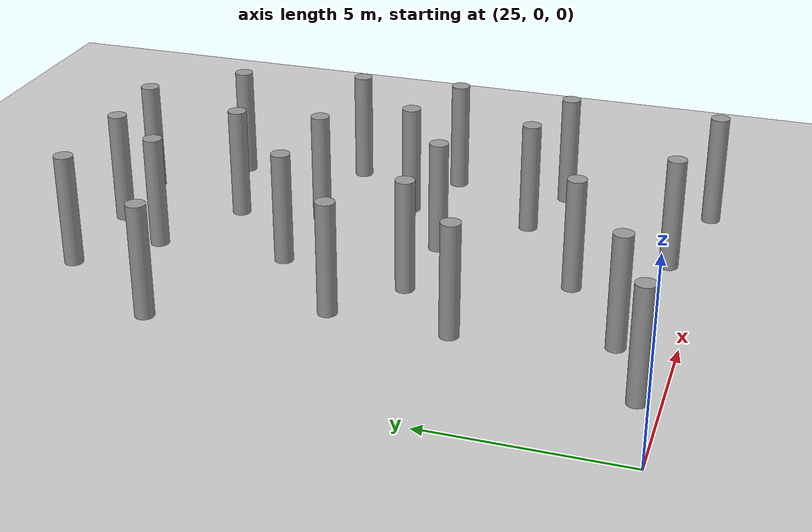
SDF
<sdf version="1.6">
 <world name="default">
  <model name="ground_plane">
   <static>1</static>
   <link name="link">
    <collision name="collision">
     <geometry><plane><normal>0 0 1</normal><size>100 100</size></plane></geometry>
     <surface><friction><ode><mu>100</mu><mu2>50</mu2></ode></friction></surface>
    </collision>
    <visual name="visual">
     <cast_shadows>0</cast_shadows>
     <geometry><plane><normal>0 0 1</normal><size>100 100</size></plane></geometry>
     <material>
      <script><uri>file://media/materials/scripts/gazebo.material</uri><name>Gazebo/Grey</name></script>
     </material>
    </visual>
   </link>
  </model>
  <model name="LjjForest_5">
   <link name="link_0_clone_11">
    <inertial>
     <mass>1</mass>
     <inertia><ixx>0.145833</ixx><ixy>0</ixy><ixz>0</ixz><iyy>0.145833</iyy><iyz>0</iyz><izz>0.125</izz></inertia>
    </inertial>
    <pose>2.92414 -7.00263 0 0 -0 0</pose>
    <visual name="visual">
     <geometry><cylinder><radius>0.25</radius><length>3</length></cylinder></geometry>
     <material>
      <lighting>1</lighting>
      <script><uri>file://media/materials/scripts/gazebo.material</uri><name>Gazebo/Grey</name></script>
      <shader type="vertex"><normal_map>__default__</normal_map></shader>
      <ambient>0.3 0.3 0.3 1</ambient>
      <diffuse>0.7 0.7 0.7 1</diffuse>
      <specular>0.01 0.01 0.01 1</specular>
      <emissive>0 0 0 1</emissive>
     </material>
    </visual>
    <collision name="collision">
     <geometry><cylinder><radius>0.25</radius><length>3</length></cylinder></geometry>
     <surface>
      <friction>
       <ode><mu>1</mu><mu2>1</mu2><fdir1>0 0 0</fdir1><slip1>0</slip1><slip2>0</slip2></ode>
       <torsional>
        <coefficient>1</coefficient>
        <patch_radius>0</patch_radius>
        <surface_radius>0</surface_radius>
        <use_patch_radius>1</use_patch_radius>
        <ode><slip>0</slip></ode>
       </torsional>
      </friction>
      <bounce><restitution_coefficient>0</restitution_coefficient><threshold>1e+06</threshold></bounce>
      <contact>
       <collide_without_contact>0</collide_without_contact>
       <collide_without_contact_bitmask>1</collide_without_contact_bitmask>
       <collide_bitmask>1</collide_bitmask>
       <ode>
        <soft_cfm>0</soft_cfm>
        <soft_erp>0.2</soft_erp>
        <kp>1e+13</kp>
        <kd>1</kd>
        <max_vel>0.01</max_vel>
        <min_depth>0</min_depth>
       </ode>
       <bullet>
        <split_impulse>1</split_impulse>
        <split_impulse_penetration_threshold>-0.01</split_impulse_penetration_threshold>
        <soft_cfm>0</soft_cfm>
        <soft_erp>0.2</soft_erp>
        <kp>1e+13</kp>
        <kd>1</kd>
       </bullet>
      </contact>
     </surface>
    </collision>
   </link>
   <link name="link_0_clone_12">
    <inertial>
     <mass>1</mass>
     <inertia><ixx>0.145833</ixx><ixy>0</ixy><ixz>0</ixz><iyy>0.145833</iyy><iyz>0</iyz><izz>0.125</izz></inertia>
    </inertial>
    <pose>4.76112 -9.06376 0 0 -0 0</pose>
    <visual name="visual">
     <geometry><cylinder><radius>0.25</radius><length>3</length></cylinder></geometry>
     <material>
      <lighting>1</lighting>
      <script><uri>file://media/materials/scripts/gazebo.material</uri><name>Gazebo/Grey</name></script>
      <shader type="vertex"><normal_map>__default__</normal_map></shader>
      <ambient>0.3 0.3 0.3 1</ambient>
      <diffuse>0.7 0.7 0.7 1</diffuse>
      <specular>0.01 0.01 0.01 1</specular>
      <emissive>0 0 0 1</emissive>
     </material>
    </visual>
    <collision name="collision">
     <geometry><cylinder><radius>0.25</radius><length>3</length></cylinder></geometry>
     <surface>
      <friction>
       <ode><mu>1</mu><mu2>1</mu2><fdir1>0 0 0</fdir1><slip1>0</slip1><slip2>0</slip2></ode>
       <torsional>
        <coefficient>1</coefficient>
        <patch_radius>0</patch_radius>
        <surface_radius>0</surface_radius>
        <use_patch_radius>1</use_patch_radius>
        <ode><slip>0</slip></ode>
       </torsional>
      </friction>
      <bounce><restitution_coefficient>0</restitution_coefficient><threshold>1e+06</threshold></bounce>
      <contact>
       <collide_without_contact>0</collide_without_contact>
       <collide_without_contact_bitmask>1</collide_without_contact_bitmask>
       <collide_bitmask>1</collide_bitmask>
       <ode>
        <soft_cfm>0</soft_cfm>
        <soft_erp>0.2</soft_erp>
        <kp>1e+13</kp>
        <kd>1</kd>
        <max_vel>0.01</max_vel>
        <min_depth>0</min_depth>
       </ode>
       <bullet>
        <split_impulse>1</split_impulse>
        <split_impulse_penetration_threshold>-0.01</split_impulse_penetration_threshold>
        <soft_cfm>0</soft_cfm>
        <soft_erp>0.2</soft_erp>
        <kp>1e+13</kp>
        <kd>1</kd>
       </bullet>
      </contact>
     </surface>
    </collision>
   </link>
   <link name="link_0_clone_13">
    <inertial>
     <mass>1</mass>
     <inertia><ixx>0.145833</ixx><ixy>0</ixy><ixz>0</ixz><iyy>0.145833</iyy><iyz>0</iyz><izz>0.125</izz></inertia>
    </inertial>
    <pose>0.731055 -7.10049 0 0 -0 0</pose>
    <visual name="visual">
     <geometry><cylinder><radius>0.25</radius><length>3</length></cylinder></geometry>
     <material>
      <lighting>1</lighting>
      <script><uri>file://media/materials/scripts/gazebo.material</uri><name>Gazebo/Grey</name></script>
      <shader type="vertex"><normal_map>__default__</normal_map></shader>
      <ambient>0.3 0.3 0.3 1</ambient>
      <diffuse>0.7 0.7 0.7 1</diffuse>
      <specular>0.01 0.01 0.01 1</specular>
      <emissive>0 0 0 1</emissive>
     </material>
    </visual>
    <collision name="collision">
     <geometry><cylinder><radius>0.25</radius><length>3</length></cylinder></geometry>
     <surface>
      <friction>
       <ode><mu>1</mu><mu2>1</mu2><fdir1>0 0 0</fdir1><slip1>0</slip1><slip2>0</slip2></ode>
       <torsional>
        <coefficient>1</coefficient>
        <patch_radius>0</patch_radius>
        <surface_radius>0</surface_radius>
        <use_patch_radius>1</use_patch_radius>
        <ode><slip>0</slip></ode>
       </torsional>
      </friction>
      <bounce><restitution_coefficient>0</restitution_coefficient><threshold>1e+06</threshold></bounce>
      <contact>
       <collide_without_contact>0</collide_without_contact>
       <collide_without_contact_bitmask>1</collide_without_contact_bitmask>
       <collide_bitmask>1</collide_bitmask>
       <ode>
        <soft_cfm>0</soft_cfm>
        <soft_erp>0.2</soft_erp>
        <kp>1e+13</kp>
        <kd>1</kd>
        <max_vel>0.01</max_vel>
        <min_depth>0</min_depth>
       </ode>
       <bullet>
        <split_impulse>1</split_impulse>
        <split_impulse_penetration_threshold>-0.01</split_impulse_penetration_threshold>
        <soft_cfm>0</soft_cfm>
        <soft_erp>0.2</soft_erp>
        <kp>1e+13</kp>
        <kd>1</kd>
       </bullet>
      </contact>
     </surface>
    </collision>
   </link>
   <link name="link_0_clone_18">
    <inertial>
     <mass>1</mass>
     <inertia><ixx>0.145833</ixx><ixy>0</ixy><ixz>0</ixz><iyy>0.145833</iyy><iyz>0</iyz><izz>0.125</izz></inertia>
    </inertial>
    <pose>-2.11118 -7.04502 0 0 -0 0</pose>
    <visual name="visual">
     <geometry><cylinder><radius>0.25</radius><length>3</length></cylinder></geometry>
     <material>
      <lighting>1</lighting>
      <script><uri>file://media/materials/scripts/gazebo.material</uri><name>Gazebo/Grey</name></script>
      <shader type="vertex"><normal_map>__default__</normal_map></shader>
      <ambient>0.3 0.3 0.3 1</ambient>
      <diffuse>0.7 0.7 0.7 1</diffuse>
      <specular>0.01 0.01 0.01 1</specular>
      <emissive>0 0 0 1</emissive>
     </material>
    </visual>
    <collision name="collision">
     <geometry><cylinder><radius>0.25</radius><length>3</length></cylinder></geometry>
     <surface>
      <friction>
       <ode><mu>1</mu><mu2>1</mu2><fdir1>0 0 0</fdir1><slip1>0</slip1><slip2>0</slip2></ode>
       <torsional>
        <coefficient>1</coefficient>
        <patch_radius>0</patch_radius>
        <surface_radius>0</surface_radius>
        <use_patch_radius>1</use_patch_radius>
        <ode><slip>0</slip></ode>
       </torsional>
      </friction>
      <bounce><restitution_coefficient>0</restitution_coefficient><threshold>1e+06</threshold></bounce>
      <contact>
       <collide_without_contact>0</collide_without_contact>
       <collide_without_contact_bitmask>1</collide_without_contact_bitmask>
       <collide_bitmask>1</collide_bitmask>
       <ode>
        <soft_cfm>0</soft_cfm>
        <soft_erp>0.2</soft_erp>
        <kp>1e+13</kp>
        <kd>1</kd>
        <max_vel>0.01</max_vel>
        <min_depth>0</min_depth>
       </ode>
       <bullet>
        <split_impulse>1</split_impulse>
        <split_impulse_penetration_threshold>-0.01</split_impulse_penetration_threshold>
        <soft_cfm>0</soft_cfm>
        <soft_erp>0.2</soft_erp>
        <kp>1e+13</kp>
        <kd>1</kd>
       </bullet>
      </contact>
     </surface>
    </collision>
   </link>
   <link name="link_0_clone_19">
    <inertial>
     <mass>1</mass>
     <inertia><ixx>0.145833</ixx><ixy>0</ixy><ixz>0</ixz><iyy>0.145833</iyy><iyz>0</iyz><izz>0.125</izz></inertia>
    </inertial>
    <pose>-0.4391 -8.69513 0 0 -0 0</pose>
    <visual name="visual">
     <geometry><cylinder><radius>0.25</radius><length>3</length></cylinder></geometry>
     <material>
      <lighting>1</lighting>
      <script><uri>file://media/materials/scripts/gazebo.material</uri><name>Gazebo/Grey</name></script>
      <shader type="vertex"><normal_map>__default__</normal_map></shader>
      <ambient>0.3 0.3 0.3 1</ambient>
      <diffuse>0.7 0.7 0.7 1</diffuse>
      <specular>0.01 0.01 0.01 1</specular>
      <emissive>0 0 0 1</emissive>
     </material>
    </visual>
    <collision name="collision">
     <geometry><cylinder><radius>0.25</radius><length>3</length></cylinder></geometry>
     <surface>
      <friction>
       <ode><mu>1</mu><mu2>1</mu2><fdir1>0 0 0</fdir1><slip1>0</slip1><slip2>0</slip2></ode>
       <torsional>
        <coefficient>1</coefficient>
        <patch_radius>0</patch_radius>
        <surface_radius>0</surface_radius>
        <use_patch_radius>1</use_patch_radius>
        <ode><slip>0</slip></ode>
       </torsional>
      </friction>
      <bounce><restitution_coefficient>0</restitution_coefficient><threshold>1e+06</threshold></bounce>
      <contact>
       <collide_without_contact>0</collide_without_contact>
       <collide_without_contact_bitmask>1</collide_without_contact_bitmask>
       <collide_bitmask>1</collide_bitmask>
       <ode>
        <soft_cfm>0</soft_cfm>
        <soft_erp>0.2</soft_erp>
        <kp>1e+13</kp>
        <kd>1</kd>
        <max_vel>0.01</max_vel>
        <min_depth>0</min_depth>
       </ode>
       <bullet>
        <split_impulse>1</split_impulse>
        <split_impulse_penetration_threshold>-0.01</split_impulse_penetration_threshold>
        <soft_cfm>0</soft_cfm>
        <soft_erp>0.2</soft_erp>
        <kp>1e+13</kp>
        <kd>1</kd>
       </bullet>
      </contact>
     </surface>
    </collision>
   </link>
   <link name="link_0_clone_20">
    <inertial>
     <mass>1</mass>
     <inertia><ixx>0.145833</ixx><ixy>0</ixy><ixz>0</ixz><iyy>0.145833</iyy><iyz>0</iyz><izz>0.125</izz></inertia>
    </inertial>
    <pose>1.97365 -10.0303 0 0 -0 0</pose>
    <visual name="visual">
     <geometry><cylinder><radius>0.25</radius><length>3</length></cylinder></geometry>
     <material>
      <lighting>1</lighting>
      <script><uri>file://media/materials/scripts/gazebo.material</uri><name>Gazebo/Grey</name></script>
      <shader type="vertex"><normal_map>__default__</normal_map></shader>
      <ambient>0.3 0.3 0.3 1</ambient>
      <diffuse>0.7 0.7 0.7 1</diffuse>
      <specular>0.01 0.01 0.01 1</specular>
      <emissive>0 0 0 1</emissive>
     </material>
    </visual>
    <collision name="collision">
     <geometry><cylinder><radius>0.25</radius><length>3</length></cylinder></geometry>
     <surface>
      <friction>
       <ode><mu>1</mu><mu2>1</mu2><fdir1>0 0 0</fdir1><slip1>0</slip1><slip2>0</slip2></ode>
       <torsional>
        <coefficient>1</coefficient>
        <patch_radius>0</patch_radius>
        <surface_radius>0</surface_radius>
        <use_patch_radius>1</use_patch_radius>
        <ode><slip>0</slip></ode>
       </torsional>
      </friction>
      <bounce><restitution_coefficient>0</restitution_coefficient><threshold>1e+06</threshold></bounce>
      <contact>
       <collide_without_contact>0</collide_without_contact>
       <collide_without_contact_bitmask>1</collide_without_contact_bitmask>
       <collide_bitmask>1</collide_bitmask>
       <ode>
        <soft_cfm>0</soft_cfm>
        <soft_erp>0.2</soft_erp>
        <kp>1e+13</kp>
        <kd>1</kd>
        <max_vel>0.01</max_vel>
        <min_depth>0</min_depth>
       </ode>
       <bullet>
        <split_impulse>1</split_impulse>
        <split_impulse_penetration_threshold>-0.01</split_impulse_penetration_threshold>
        <soft_cfm>0</soft_cfm>
        <soft_erp>0.2</soft_erp>
        <kp>1e+13</kp>
        <kd>1</kd>
       </bullet>
      </contact>
     </surface>
    </collision>
   </link>
   <link name="link_0_clone_21">
    <inertial>
     <mass>1</mass>
     <inertia><ixx>0.145833</ixx><ixy>0</ixy><ixz>0</ixz><iyy>0.145833</iyy><iyz>0</iyz><izz>0.125</izz></inertia>
    </inertial>
    <pose>-4.11405 -10.0375 0 0 -0 0</pose>
    <visual name="visual">
     <geometry><cylinder><radius>0.25</radius><length>3</length></cylinder></geometry>
     <material>
      <lighting>1</lighting>
      <script><uri>file://media/materials/scripts/gazebo.material</uri><name>Gazebo/Grey</name></script>
      <shader type="vertex"><normal_map>__default__</normal_map></shader>
      <ambient>0.3 0.3 0.3 1</ambient>
      <diffuse>0.7 0.7 0.7 1</diffuse>
      <specular>0.01 0.01 0.01 1</specular>
      <emissive>0 0 0 1</emissive>
     </material>
    </visual>
    <collision name="collision">
     <geometry><cylinder><radius>0.25</radius><length>3</length></cylinder></geometry>
     <surface>
      <friction>
       <ode><mu>1</mu><mu2>1</mu2><fdir1>0 0 0</fdir1><slip1>0</slip1><slip2>0</slip2></ode>
       <torsional>
        <coefficient>1</coefficient>
        <patch_radius>0</patch_radius>
        <surface_radius>0</surface_radius>
        <use_patch_radius>1</use_patch_radius>
        <ode><slip>0</slip></ode>
       </torsional>
      </friction>
      <bounce><restitution_coefficient>0</restitution_coefficient><threshold>1e+06</threshold></bounce>
      <contact>
       <collide_without_contact>0</collide_without_contact>
       <collide_without_contact_bitmask>1</collide_without_contact_bitmask>
       <collide_bitmask>1</collide_bitmask>
       <ode>
        <soft_cfm>0</soft_cfm>
        <soft_erp>0.2</soft_erp>
        <kp>1e+13</kp>
        <kd>1</kd>
        <max_vel>0.01</max_vel>
        <min_depth>0</min_depth>
       </ode>
       <bullet>
        <split_impulse>1</split_impulse>
        <split_impulse_penetration_threshold>-0.01</split_impulse_penetration_threshold>
        <soft_cfm>0</soft_cfm>
        <soft_erp>0.2</soft_erp>
        <kp>1e+13</kp>
        <kd>1</kd>
       </bullet>
      </contact>
     </surface>
    </collision>
   </link>
   <static>0</static>
   <pose>31.8329 22.65 1.49999 0 -0 0.00223</pose>
  </model>
  <model name="LjjForest_6">
   <link name="link_0">
    <inertial>
     <mass>1</mass>
     <inertia><ixx>0.145833</ixx><ixy>0</ixy><ixz>0</ixz><iyy>0.145833</iyy><iyz>0</iyz><izz>0.125</izz></inertia>
    </inertial>
    <pose>-5.02717 0.116957 0 0 -0 0</pose>
    <visual name="visual">
     <geometry><cylinder><radius>0.25</radius><length>3</length></cylinder></geometry>
     <material>
      <lighting>1</lighting>
      <script><uri>file://media/materials/scripts/gazebo.material</uri><name>Gazebo/Grey</name></script>
      <shader type="vertex"><normal_map>__default__</normal_map></shader>
      <ambient>0.3 0.3 0.3 1</ambient>
      <diffuse>0.7 0.7 0.7 1</diffuse>
      <specular>0.01 0.01 0.01 1</specular>
      <emissive>0 0 0 1</emissive>
     </material>
    </visual>
    <collision name="collision">
     <geometry><cylinder><radius>0.25</radius><length>3</length></cylinder></geometry>
     <surface>
      <friction>
       <ode><mu>1</mu><mu2>1</mu2><fdir1>0 0 0</fdir1><slip1>0</slip1><slip2>0</slip2></ode>
       <torsional>
        <coefficient>1</coefficient>
        <patch_radius>0</patch_radius>
        <surface_radius>0</surface_radius>
        <use_patch_radius>1</use_patch_radius>
        <ode><slip>0</slip></ode>
       </torsional>
      </friction>
      <bounce><restitution_coefficient>0</restitution_coefficient><threshold>1e+06</threshold></bounce>
      <contact>
       <collide_without_contact>0</collide_without_contact>
       <collide_without_contact_bitmask>1</collide_without_contact_bitmask>
       <collide_bitmask>1</collide_bitmask>
       <ode>
        <soft_cfm>0</soft_cfm>
        <soft_erp>0.2</soft_erp>
        <kp>1e+13</kp>
        <kd>1</kd>
        <max_vel>0.01</max_vel>
        <min_depth>0</min_depth>
       </ode>
       <bullet>
        <split_impulse>1</split_impulse>
        <split_impulse_penetration_threshold>-0.01</split_impulse_penetration_threshold>
        <soft_cfm>0</soft_cfm>
        <soft_erp>0.2</soft_erp>
        <kp>1e+13</kp>
        <kd>1</kd>
       </bullet>
      </contact>
     </surface>
    </collision>
   </link>
   <link name="link_0_clone">
    <inertial>
     <mass>1</mass>
     <inertia><ixx>0.145833</ixx><ixy>0</ixy><ixz>0</ixz><iyy>0.145833</iyy><iyz>0</iyz><izz>0.125</izz></inertia>
    </inertial>
    <pose>-2.83119 0.981911 0 0 -0 0</pose>
    <visual name="visual">
     <geometry><cylinder><radius>0.25</radius><length>3</length></cylinder></geometry>
     <material>
      <lighting>1</lighting>
      <script><uri>file://media/materials/scripts/gazebo.material</uri><name>Gazebo/Grey</name></script>
      <shader type="vertex"><normal_map>__default__</normal_map></shader>
      <ambient>0.3 0.3 0.3 1</ambient>
      <diffuse>0.7 0.7 0.7 1</diffuse>
      <specular>0.01 0.01 0.01 1</specular>
      <emissive>0 0 0 1</emissive>
     </material>
    </visual>
    <collision name="collision">
     <geometry><cylinder><radius>0.25</radius><length>3</length></cylinder></geometry>
     <surface>
      <friction>
       <ode><mu>1</mu><mu2>1</mu2><fdir1>0 0 0</fdir1><slip1>0</slip1><slip2>0</slip2></ode>
       <torsional>
        <coefficient>1</coefficient>
        <patch_radius>0</patch_radius>
        <surface_radius>0</surface_radius>
        <use_patch_radius>1</use_patch_radius>
        <ode><slip>0</slip></ode>
       </torsional>
      </friction>
      <bounce><restitution_coefficient>0</restitution_coefficient><threshold>1e+06</threshold></bounce>
      <contact>
       <collide_without_contact>0</collide_without_contact>
       <collide_without_contact_bitmask>1</collide_without_contact_bitmask>
       <collide_bitmask>1</collide_bitmask>
       <ode>
        <soft_cfm>0</soft_cfm>
        <soft_erp>0.2</soft_erp>
        <kp>1e+13</kp>
        <kd>1</kd>
        <max_vel>0.01</max_vel>
        <min_depth>0</min_depth>
       </ode>
       <bullet>
        <split_impulse>1</split_impulse>
        <split_impulse_penetration_threshold>-0.01</split_impulse_penetration_threshold>
        <soft_cfm>0</soft_cfm>
        <soft_erp>0.2</soft_erp>
        <kp>1e+13</kp>
        <kd>1</kd>
       </bullet>
      </contact>
     </surface>
    </collision>
   </link>
   <link name="link_0_clone_0">
    <inertial>
     <mass>1</mass>
     <inertia><ixx>0.145833</ixx><ixy>0</ixy><ixz>0</ixz><iyy>0.145833</iyy><iyz>0</iyz><izz>0.125</izz></inertia>
    </inertial>
    <pose>-0.25253 2.5682 0 0 -0 0</pose>
    <visual name="visual">
     <geometry><cylinder><radius>0.25</radius><length>3</length></cylinder></geometry>
     <material>
      <lighting>1</lighting>
      <script><uri>file://media/materials/scripts/gazebo.material</uri><name>Gazebo/Grey</name></script>
      <shader type="vertex"><normal_map>__default__</normal_map></shader>
      <ambient>0.3 0.3 0.3 1</ambient>
      <diffuse>0.7 0.7 0.7 1</diffuse>
      <specular>0.01 0.01 0.01 1</specular>
      <emissive>0 0 0 1</emissive>
     </material>
    </visual>
    <collision name="collision">
     <geometry><cylinder><radius>0.25</radius><length>3</length></cylinder></geometry>
     <surface>
      <friction>
       <ode><mu>1</mu><mu2>1</mu2><fdir1>0 0 0</fdir1><slip1>0</slip1><slip2>0</slip2></ode>
       <torsional>
        <coefficient>1</coefficient>
        <patch_radius>0</patch_radius>
        <surface_radius>0</surface_radius>
        <use_patch_radius>1</use_patch_radius>
        <ode><slip>0</slip></ode>
       </torsional>
      </friction>
      <bounce><restitution_coefficient>0</restitution_coefficient><threshold>1e+06</threshold></bounce>
      <contact>
       <collide_without_contact>0</collide_without_contact>
       <collide_without_contact_bitmask>1</collide_without_contact_bitmask>
       <collide_bitmask>1</collide_bitmask>
       <ode>
        <soft_cfm>0</soft_cfm>
        <soft_erp>0.2</soft_erp>
        <kp>1e+13</kp>
        <kd>1</kd>
        <max_vel>0.01</max_vel>
        <min_depth>0</min_depth>
       </ode>
       <bullet>
        <split_impulse>1</split_impulse>
        <split_impulse_penetration_threshold>-0.01</split_impulse_penetration_threshold>
        <soft_cfm>0</soft_cfm>
        <soft_erp>0.2</soft_erp>
        <kp>1e+13</kp>
        <kd>1</kd>
       </bullet>
      </contact>
     </surface>
    </collision>
   </link>
   <link name="link_0_clone_2">
    <inertial>
     <mass>1</mass>
     <inertia><ixx>0.145833</ixx><ixy>0</ixy><ixz>0</ixz><iyy>0.145833</iyy><iyz>0</iyz><izz>0.125</izz></inertia>
    </inertial>
    <pose>1.64727 0.418921 0 0 -0 0</pose>
    <visual name="visual">
     <geometry><cylinder><radius>0.25</radius><length>3</length></cylinder></geometry>
     <material>
      <lighting>1</lighting>
      <script><uri>file://media/materials/scripts/gazebo.material</uri><name>Gazebo/Grey</name></script>
      <shader type="vertex"><normal_map>__default__</normal_map></shader>
      <ambient>0.3 0.3 0.3 1</ambient>
      <diffuse>0.7 0.7 0.7 1</diffuse>
      <specular>0.01 0.01 0.01 1</specular>
      <emissive>0 0 0 1</emissive>
     </material>
    </visual>
    <collision name="collision">
     <geometry><cylinder><radius>0.25</radius><length>3</length></cylinder></geometry>
     <surface>
      <friction>
       <ode><mu>1</mu><mu2>1</mu2><fdir1>0 0 0</fdir1><slip1>0</slip1><slip2>0</slip2></ode>
       <torsional>
        <coefficient>1</coefficient>
        <patch_radius>0</patch_radius>
        <surface_radius>0</surface_radius>
        <use_patch_radius>1</use_patch_radius>
        <ode><slip>0</slip></ode>
       </torsional>
      </friction>
      <bounce><restitution_coefficient>0</restitution_coefficient><threshold>1e+06</threshold></bounce>
      <contact>
       <collide_without_contact>0</collide_without_contact>
       <collide_without_contact_bitmask>1</collide_without_contact_bitmask>
       <collide_bitmask>1</collide_bitmask>
       <ode>
        <soft_cfm>0</soft_cfm>
        <soft_erp>0.2</soft_erp>
        <kp>1e+13</kp>
        <kd>1</kd>
        <max_vel>0.01</max_vel>
        <min_depth>0</min_depth>
       </ode>
       <bullet>
        <split_impulse>1</split_impulse>
        <split_impulse_penetration_threshold>-0.01</split_impulse_penetration_threshold>
        <soft_cfm>0</soft_cfm>
        <soft_erp>0.2</soft_erp>
        <kp>1e+13</kp>
        <kd>1</kd>
       </bullet>
      </contact>
     </surface>
    </collision>
   </link>
   <link name="link_0_clone_24">
    <inertial>
     <mass>1</mass>
     <inertia><ixx>0.145833</ixx><ixy>0</ixy><ixz>0</ixz><iyy>0.145833</iyy><iyz>0</iyz><izz>0.125</izz></inertia>
    </inertial>
    <pose>2.92874 7.75131 0 0 -0 0</pose>
    <visual name="visual">
     <geometry><cylinder><radius>0.25</radius><length>3</length></cylinder></geometry>
     <material>
      <lighting>1</lighting>
      <script><uri>file://media/materials/scripts/gazebo.material</uri><name>Gazebo/Grey</name></script>
      <shader type="vertex"><normal_map>__default__</normal_map></shader>
      <ambient>0.3 0.3 0.3 1</ambient>
      <diffuse>0.7 0.7 0.7 1</diffuse>
      <specular>0.01 0.01 0.01 1</specular>
      <emissive>0 0 0 1</emissive>
     </material>
    </visual>
    <collision name="collision">
     <geometry><cylinder><radius>0.25</radius><length>3</length></cylinder></geometry>
     <surface>
      <friction>
       <ode><mu>1</mu><mu2>1</mu2><fdir1>0 0 0</fdir1><slip1>0</slip1><slip2>0</slip2></ode>
       <torsional>
        <coefficient>1</coefficient>
        <patch_radius>0</patch_radius>
        <surface_radius>0</surface_radius>
        <use_patch_radius>1</use_patch_radius>
        <ode><slip>0</slip></ode>
       </torsional>
      </friction>
      <bounce><restitution_coefficient>0</restitution_coefficient><threshold>1e+06</threshold></bounce>
      <contact>
       <collide_without_contact>0</collide_without_contact>
       <collide_without_contact_bitmask>1</collide_without_contact_bitmask>
       <collide_bitmask>1</collide_bitmask>
       <ode>
        <soft_cfm>0</soft_cfm>
        <soft_erp>0.2</soft_erp>
        <kp>1e+13</kp>
        <kd>1</kd>
        <max_vel>0.01</max_vel>
        <min_depth>0</min_depth>
       </ode>
       <bullet>
        <split_impulse>1</split_impulse>
        <split_impulse_penetration_threshold>-0.01</split_impulse_penetration_threshold>
        <soft_cfm>0</soft_cfm>
        <soft_erp>0.2</soft_erp>
        <kp>1e+13</kp>
        <kd>1</kd>
       </bullet>
      </contact>
     </surface>
    </collision>
   </link>
   <link name="link_0_clone_25">
    <inertial>
     <mass>1</mass>
     <inertia><ixx>0.145833</ixx><ixy>0</ixy><ixz>0</ixz><iyy>0.145833</iyy><iyz>0</iyz><izz>0.125</izz></inertia>
    </inertial>
    <pose>4.82479 9.76951 0 0 -0 0</pose>
    <visual name="visual">
     <geometry><cylinder><radius>0.25</radius><length>3</length></cylinder></geometry>
     <material>
      <lighting>1</lighting>
      <script><uri>file://media/materials/scripts/gazebo.material</uri><name>Gazebo/Grey</name></script>
      <shader type="vertex"><normal_map>__default__</normal_map></shader>
      <ambient>0.3 0.3 0.3 1</ambient>
      <diffuse>0.7 0.7 0.7 1</diffuse>
      <specular>0.01 0.01 0.01 1</specular>
      <emissive>0 0 0 1</emissive>
     </material>
    </visual>
    <collision name="collision">
     <geometry><cylinder><radius>0.25</radius><length>3</length></cylinder></geometry>
     <surface>
      <friction>
       <ode><mu>1</mu><mu2>1</mu2><fdir1>0 0 0</fdir1><slip1>0</slip1><slip2>0</slip2></ode>
       <torsional>
        <coefficient>1</coefficient>
        <patch_radius>0</patch_radius>
        <surface_radius>0</surface_radius>
        <use_patch_radius>1</use_patch_radius>
        <ode><slip>0</slip></ode>
       </torsional>
      </friction>
      <bounce><restitution_coefficient>0</restitution_coefficient><threshold>1e+06</threshold></bounce>
      <contact>
       <collide_without_contact>0</collide_without_contact>
       <collide_without_contact_bitmask>1</collide_without_contact_bitmask>
       <collide_bitmask>1</collide_bitmask>
       <ode>
        <soft_cfm>0</soft_cfm>
        <soft_erp>0.2</soft_erp>
        <kp>1e+13</kp>
        <kd>1</kd>
        <max_vel>0.01</max_vel>
        <min_depth>0</min_depth>
       </ode>
       <bullet>
        <split_impulse>1</split_impulse>
        <split_impulse_penetration_threshold>-0.01</split_impulse_penetration_threshold>
        <soft_cfm>0</soft_cfm>
        <soft_erp>0.2</soft_erp>
        <kp>1e+13</kp>
        <kd>1</kd>
       </bullet>
      </contact>
     </surface>
    </collision>
   </link>
   <link name="link_0_clone_26">
    <inertial>
     <mass>1</mass>
     <inertia><ixx>0.145833</ixx><ixy>0</ixy><ixz>0</ixz><iyy>0.145833</iyy><iyz>0</iyz><izz>0.125</izz></inertia>
    </inertial>
    <pose>1.66794 9.91533 0 0 -0 0</pose>
    <visual name="visual">
     <geometry><cylinder><radius>0.25</radius><length>3</length></cylinder></geometry>
     <material>
      <lighting>1</lighting>
      <script><uri>file://media/materials/scripts/gazebo.material</uri><name>Gazebo/Grey</name></script>
      <shader type="vertex"><normal_map>__default__</normal_map></shader>
      <ambient>0.3 0.3 0.3 1</ambient>
      <diffuse>0.7 0.7 0.7 1</diffuse>
      <specular>0.01 0.01 0.01 1</specular>
      <emissive>0 0 0 1</emissive>
     </material>
    </visual>
    <collision name="collision">
     <geometry><cylinder><radius>0.25</radius><length>3</length></cylinder></geometry>
     <surface>
      <friction>
       <ode><mu>1</mu><mu2>1</mu2><fdir1>0 0 0</fdir1><slip1>0</slip1><slip2>0</slip2></ode>
       <torsional>
        <coefficient>1</coefficient>
        <patch_radius>0</patch_radius>
        <surface_radius>0</surface_radius>
        <use_patch_radius>1</use_patch_radius>
        <ode><slip>0</slip></ode>
       </torsional>
      </friction>
      <bounce><restitution_coefficient>0</restitution_coefficient><threshold>1e+06</threshold></bounce>
      <contact>
       <collide_without_contact>0</collide_without_contact>
       <collide_without_contact_bitmask>1</collide_without_contact_bitmask>
       <collide_bitmask>1</collide_bitmask>
       <ode>
        <soft_cfm>0</soft_cfm>
        <soft_erp>0.2</soft_erp>
        <kp>1e+13</kp>
        <kd>1</kd>
        <max_vel>0.01</max_vel>
        <min_depth>0</min_depth>
       </ode>
       <bullet>
        <split_impulse>1</split_impulse>
        <split_impulse_penetration_threshold>-0.01</split_impulse_penetration_threshold>
        <soft_cfm>0</soft_cfm>
        <soft_erp>0.2</soft_erp>
        <kp>1e+13</kp>
        <kd>1</kd>
       </bullet>
      </contact>
     </surface>
    </collision>
   </link>
   <link name="link_0_clone_27">
    <inertial>
     <mass>1</mass>
     <inertia><ixx>0.145833</ixx><ixy>0</ixy><ixz>0</ixz><iyy>0.145833</iyy><iyz>0</iyz><izz>0.125</izz></inertia>
    </inertial>
    <pose>-0.975859 10.0087 0 0 -0 0</pose>
    <visual name="visual">
     <geometry><cylinder><radius>0.25</radius><length>3</length></cylinder></geometry>
     <material>
      <lighting>1</lighting>
      <script><uri>file://media/materials/scripts/gazebo.material</uri><name>Gazebo/Grey</name></script>
      <shader type="vertex"><normal_map>__default__</normal_map></shader>
      <ambient>0.3 0.3 0.3 1</ambient>
      <diffuse>0.7 0.7 0.7 1</diffuse>
      <specular>0.01 0.01 0.01 1</specular>
      <emissive>0 0 0 1</emissive>
     </material>
    </visual>
    <collision name="collision">
     <geometry><cylinder><radius>0.25</radius><length>3</length></cylinder></geometry>
     <surface>
      <friction>
       <ode><mu>1</mu><mu2>1</mu2><fdir1>0 0 0</fdir1><slip1>0</slip1><slip2>0</slip2></ode>
       <torsional>
        <coefficient>1</coefficient>
        <patch_radius>0</patch_radius>
        <surface_radius>0</surface_radius>
        <use_patch_radius>1</use_patch_radius>
        <ode><slip>0</slip></ode>
       </torsional>
      </friction>
      <bounce><restitution_coefficient>0</restitution_coefficient><threshold>1e+06</threshold></bounce>
      <contact>
       <collide_without_contact>0</collide_without_contact>
       <collide_without_contact_bitmask>1</collide_without_contact_bitmask>
       <collide_bitmask>1</collide_bitmask>
       <ode>
        <soft_cfm>0</soft_cfm>
        <soft_erp>0.2</soft_erp>
        <kp>1e+13</kp>
        <kd>1</kd>
        <max_vel>0.01</max_vel>
        <min_depth>0</min_depth>
       </ode>
       <bullet>
        <split_impulse>1</split_impulse>
        <split_impulse_penetration_threshold>-0.01</split_impulse_penetration_threshold>
        <soft_cfm>0</soft_cfm>
        <soft_erp>0.2</soft_erp>
        <kp>1e+13</kp>
        <kd>1</kd>
       </bullet>
      </contact>
     </surface>
    </collision>
   </link>
   <link name="link_0_clone_28">
    <inertial>
     <mass>1</mass>
     <inertia><ixx>0.145833</ixx><ixy>0</ixy><ixz>0</ixz><iyy>0.145833</iyy><iyz>0</iyz><izz>0.125</izz></inertia>
    </inertial>
    <pose>-3.28832 7.97521 0 0 -0 0</pose>
    <visual name="visual">
     <geometry><cylinder><radius>0.25</radius><length>3</length></cylinder></geometry>
     <material>
      <lighting>1</lighting>
      <script><uri>file://media/materials/scripts/gazebo.material</uri><name>Gazebo/Grey</name></script>
      <shader type="vertex"><normal_map>__default__</normal_map></shader>
      <ambient>0.3 0.3 0.3 1</ambient>
      <diffuse>0.7 0.7 0.7 1</diffuse>
      <specular>0.01 0.01 0.01 1</specular>
      <emissive>0 0 0 1</emissive>
     </material>
    </visual>
    <collision name="collision">
     <geometry><cylinder><radius>0.25</radius><length>3</length></cylinder></geometry>
     <surface>
      <friction>
       <ode><mu>1</mu><mu2>1</mu2><fdir1>0 0 0</fdir1><slip1>0</slip1><slip2>0</slip2></ode>
       <torsional>
        <coefficient>1</coefficient>
        <patch_radius>0</patch_radius>
        <surface_radius>0</surface_radius>
        <use_patch_radius>1</use_patch_radius>
        <ode><slip>0</slip></ode>
       </torsional>
      </friction>
      <bounce><restitution_coefficient>0</restitution_coefficient><threshold>1e+06</threshold></bounce>
      <contact>
       <collide_without_contact>0</collide_without_contact>
       <collide_without_contact_bitmask>1</collide_without_contact_bitmask>
       <collide_bitmask>1</collide_bitmask>
       <ode>
        <soft_cfm>0</soft_cfm>
        <soft_erp>0.2</soft_erp>
        <kp>1e+13</kp>
        <kd>1</kd>
        <max_vel>0.01</max_vel>
        <min_depth>0</min_depth>
       </ode>
       <bullet>
        <split_impulse>1</split_impulse>
        <split_impulse_penetration_threshold>-0.01</split_impulse_penetration_threshold>
        <soft_cfm>0</soft_cfm>
        <soft_erp>0.2</soft_erp>
        <kp>1e+13</kp>
        <kd>1</kd>
       </bullet>
      </contact>
     </surface>
    </collision>
   </link>
   <link name="link_0_clone_3">
    <inertial>
     <mass>1</mass>
     <inertia><ixx>0.145833</ixx><ixy>0</ixy><ixz>0</ixz><iyy>0.145833</iyy><iyz>0</iyz><izz>0.125</izz></inertia>
    </inertial>
    <pose>2.76214 4.38882 0 0 -0 0</pose>
    <visual name="visual">
     <geometry><cylinder><radius>0.25</radius><length>3</length></cylinder></geometry>
     <material>
      <lighting>1</lighting>
      <script><uri>file://media/materials/scripts/gazebo.material</uri><name>Gazebo/Grey</name></script>
      <shader type="vertex"><normal_map>__default__</normal_map></shader>
      <ambient>0.3 0.3 0.3 1</ambient>
      <diffuse>0.7 0.7 0.7 1</diffuse>
      <specular>0.01 0.01 0.01 1</specular>
      <emissive>0 0 0 1</emissive>
     </material>
    </visual>
    <collision name="collision">
     <geometry><cylinder><radius>0.25</radius><length>3</length></cylinder></geometry>
     <surface>
      <friction>
       <ode><mu>1</mu><mu2>1</mu2><fdir1>0 0 0</fdir1><slip1>0</slip1><slip2>0</slip2></ode>
       <torsional>
        <coefficient>1</coefficient>
        <patch_radius>0</patch_radius>
        <surface_radius>0</surface_radius>
        <use_patch_radius>1</use_patch_radius>
        <ode><slip>0</slip></ode>
       </torsional>
      </friction>
      <bounce><restitution_coefficient>0</restitution_coefficient><threshold>1e+06</threshold></bounce>
      <contact>
       <collide_without_contact>0</collide_without_contact>
       <collide_without_contact_bitmask>1</collide_without_contact_bitmask>
       <collide_bitmask>1</collide_bitmask>
       <ode>
        <soft_cfm>0</soft_cfm>
        <soft_erp>0.2</soft_erp>
        <kp>1e+13</kp>
        <kd>1</kd>
        <max_vel>0.01</max_vel>
        <min_depth>0</min_depth>
       </ode>
       <bullet>
        <split_impulse>1</split_impulse>
        <split_impulse_penetration_threshold>-0.01</split_impulse_penetration_threshold>
        <soft_cfm>0</soft_cfm>
        <soft_erp>0.2</soft_erp>
        <kp>1e+13</kp>
        <kd>1</kd>
       </bullet>
      </contact>
     </surface>
    </collision>
   </link>
   <link name="link_0_clone_30">
    <inertial>
     <mass>1</mass>
     <inertia><ixx>0.145833</ixx><ixy>0</ixy><ixz>0</ixz><iyy>0.145833</iyy><iyz>0</iyz><izz>0.125</izz></inertia>
    </inertial>
    <pose>4.96935 6.93626 0 0 -0 0</pose>
    <visual name="visual">
     <geometry><cylinder><radius>0.25</radius><length>3</length></cylinder></geometry>
     <material>
      <lighting>1</lighting>
      <script><uri>file://media/materials/scripts/gazebo.material</uri><name>Gazebo/Grey</name></script>
      <shader type="vertex"><normal_map>__default__</normal_map></shader>
      <ambient>0.3 0.3 0.3 1</ambient>
      <diffuse>0.7 0.7 0.7 1</diffuse>
      <specular>0.01 0.01 0.01 1</specular>
      <emissive>0 0 0 1</emissive>
     </material>
    </visual>
    <collision name="collision">
     <geometry><cylinder><radius>0.25</radius><length>3</length></cylinder></geometry>
     <surface>
      <friction>
       <ode><mu>1</mu><mu2>1</mu2><fdir1>0 0 0</fdir1><slip1>0</slip1><slip2>0</slip2></ode>
       <torsional>
        <coefficient>1</coefficient>
        <patch_radius>0</patch_radius>
        <surface_radius>0</surface_radius>
        <use_patch_radius>1</use_patch_radius>
        <ode><slip>0</slip></ode>
       </torsional>
      </friction>
      <bounce><restitution_coefficient>0</restitution_coefficient><threshold>1e+06</threshold></bounce>
      <contact>
       <collide_without_contact>0</collide_without_contact>
       <collide_without_contact_bitmask>1</collide_without_contact_bitmask>
       <collide_bitmask>1</collide_bitmask>
       <ode>
        <soft_cfm>0</soft_cfm>
        <soft_erp>0.2</soft_erp>
        <kp>1e+13</kp>
        <kd>1</kd>
        <max_vel>0.01</max_vel>
        <min_depth>0</min_depth>
       </ode>
       <bullet>
        <split_impulse>1</split_impulse>
        <split_impulse_penetration_threshold>-0.01</split_impulse_penetration_threshold>
        <soft_cfm>0</soft_cfm>
        <soft_erp>0.2</soft_erp>
        <kp>1e+13</kp>
        <kd>1</kd>
       </bullet>
      </contact>
     </surface>
    </collision>
   </link>
   <link name="link_0_clone_31">
    <inertial>
     <mass>1</mass>
     <inertia><ixx>0.145833</ixx><ixy>0</ixy><ixz>0</ixz><iyy>0.145833</iyy><iyz>0</iyz><izz>0.125</izz></inertia>
    </inertial>
    <pose>4.87388 3.77106 0 0 -0 0</pose>
    <visual name="visual">
     <geometry><cylinder><radius>0.25</radius><length>3</length></cylinder></geometry>
     <material>
      <lighting>1</lighting>
      <script><uri>file://media/materials/scripts/gazebo.material</uri><name>Gazebo/Grey</name></script>
      <shader type="vertex"><normal_map>__default__</normal_map></shader>
      <ambient>0.3 0.3 0.3 1</ambient>
      <diffuse>0.7 0.7 0.7 1</diffuse>
      <specular>0.01 0.01 0.01 1</specular>
      <emissive>0 0 0 1</emissive>
     </material>
    </visual>
    <collision name="collision">
     <geometry><cylinder><radius>0.25</radius><length>3</length></cylinder></geometry>
     <surface>
      <friction>
       <ode><mu>1</mu><mu2>1</mu2><fdir1>0 0 0</fdir1><slip1>0</slip1><slip2>0</slip2></ode>
       <torsional>
        <coefficient>1</coefficient>
        <patch_radius>0</patch_radius>
        <surface_radius>0</surface_radius>
        <use_patch_radius>1</use_patch_radius>
        <ode><slip>0</slip></ode>
       </torsional>
      </friction>
      <bounce><restitution_coefficient>0</restitution_coefficient><threshold>1e+06</threshold></bounce>
      <contact>
       <collide_without_contact>0</collide_without_contact>
       <collide_without_contact_bitmask>1</collide_without_contact_bitmask>
       <collide_bitmask>1</collide_bitmask>
       <ode>
        <soft_cfm>0</soft_cfm>
        <soft_erp>0.2</soft_erp>
        <kp>1e+13</kp>
        <kd>1</kd>
        <max_vel>0.01</max_vel>
        <min_depth>0</min_depth>
       </ode>
       <bullet>
        <split_impulse>1</split_impulse>
        <split_impulse_penetration_threshold>-0.01</split_impulse_penetration_threshold>
        <soft_cfm>0</soft_cfm>
        <soft_erp>0.2</soft_erp>
        <kp>1e+13</kp>
        <kd>1</kd>
       </bullet>
      </contact>
     </surface>
    </collision>
   </link>
   <link name="link_0_clone_4">
    <inertial>
     <mass>1</mass>
     <inertia><ixx>0.145833</ixx><ixy>0</ixy><ixz>0</ixz><iyy>0.145833</iyy><iyz>0</iyz><izz>0.125</izz></inertia>
    </inertial>
    <pose>0.858928 6.3824 0 0 -0 0</pose>
    <visual name="visual">
     <geometry><cylinder><radius>0.25</radius><length>3</length></cylinder></geometry>
     <material>
      <lighting>1</lighting>
      <script><uri>file://media/materials/scripts/gazebo.material</uri><name>Gazebo/Grey</name></script>
      <shader type="vertex"><normal_map>__default__</normal_map></shader>
      <ambient>0.3 0.3 0.3 1</ambient>
      <diffuse>0.7 0.7 0.7 1</diffuse>
      <specular>0.01 0.01 0.01 1</specular>
      <emissive>0 0 0 1</emissive>
     </material>
    </visual>
    <collision name="collision">
     <geometry><cylinder><radius>0.25</radius><length>3</length></cylinder></geometry>
     <surface>
      <friction>
       <ode><mu>1</mu><mu2>1</mu2><fdir1>0 0 0</fdir1><slip1>0</slip1><slip2>0</slip2></ode>
       <torsional>
        <coefficient>1</coefficient>
        <patch_radius>0</patch_radius>
        <surface_radius>0</surface_radius>
        <use_patch_radius>1</use_patch_radius>
        <ode><slip>0</slip></ode>
       </torsional>
      </friction>
      <bounce><restitution_coefficient>0</restitution_coefficient><threshold>1e+06</threshold></bounce>
      <contact>
       <collide_without_contact>0</collide_without_contact>
       <collide_without_contact_bitmask>1</collide_without_contact_bitmask>
       <collide_bitmask>1</collide_bitmask>
       <ode>
        <soft_cfm>0</soft_cfm>
        <soft_erp>0.2</soft_erp>
        <kp>1e+13</kp>
        <kd>1</kd>
        <max_vel>0.01</max_vel>
        <min_depth>0</min_depth>
       </ode>
       <bullet>
        <split_impulse>1</split_impulse>
        <split_impulse_penetration_threshold>-0.01</split_impulse_penetration_threshold>
        <soft_cfm>0</soft_cfm>
        <soft_erp>0.2</soft_erp>
        <kp>1e+13</kp>
        <kd>1</kd>
       </bullet>
      </contact>
     </surface>
    </collision>
   </link>
   <link name="link_0_clone_5">
    <inertial>
     <mass>1</mass>
     <inertia><ixx>0.145833</ixx><ixy>0</ixy><ixz>0</ixz><iyy>0.145833</iyy><iyz>0</iyz><izz>0.125</izz></inertia>
    </inertial>
    <pose>-1.56065 6.53618 0 0 -0 0</pose>
    <visual name="visual">
     <geometry><cylinder><radius>0.25</radius><length>3</length></cylinder></geometry>
     <material>
      <lighting>1</lighting>
      <script><uri>file://media/materials/scripts/gazebo.material</uri><name>Gazebo/Grey</name></script>
      <shader type="vertex"><normal_map>__default__</normal_map></shader>
      <ambient>0.3 0.3 0.3 1</ambient>
      <diffuse>0.7 0.7 0.7 1</diffuse>
      <specular>0.01 0.01 0.01 1</specular>
      <emissive>0 0 0 1</emissive>
     </material>
    </visual>
    <collision name="collision">
     <geometry><cylinder><radius>0.25</radius><length>3</length></cylinder></geometry>
     <surface>
      <friction>
       <ode><mu>1</mu><mu2>1</mu2><fdir1>0 0 0</fdir1><slip1>0</slip1><slip2>0</slip2></ode>
       <torsional>
        <coefficient>1</coefficient>
        <patch_radius>0</patch_radius>
        <surface_radius>0</surface_radius>
        <use_patch_radius>1</use_patch_radius>
        <ode><slip>0</slip></ode>
       </torsional>
      </friction>
      <bounce><restitution_coefficient>0</restitution_coefficient><threshold>1e+06</threshold></bounce>
      <contact>
       <collide_without_contact>0</collide_without_contact>
       <collide_without_contact_bitmask>1</collide_without_contact_bitmask>
       <collide_bitmask>1</collide_bitmask>
       <ode>
        <soft_cfm>0</soft_cfm>
        <soft_erp>0.2</soft_erp>
        <kp>1e+13</kp>
        <kd>1</kd>
        <max_vel>0.01</max_vel>
        <min_depth>0</min_depth>
       </ode>
       <bullet>
        <split_impulse>1</split_impulse>
        <split_impulse_penetration_threshold>-0.01</split_impulse_penetration_threshold>
        <soft_cfm>0</soft_cfm>
        <soft_erp>0.2</soft_erp>
        <kp>1e+13</kp>
        <kd>1</kd>
       </bullet>
      </contact>
     </surface>
    </collision>
   </link>
   <link name="link_0_clone_6">
    <inertial>
     <mass>1</mass>
     <inertia><ixx>0.145833</ixx><ixy>0</ixy><ixz>0</ixz><iyy>0.145833</iyy><iyz>0</iyz><izz>0.125</izz></inertia>
    </inertial>
    <pose>-3.46215 4.85006 0 0 -0 0</pose>
    <visual name="visual">
     <geometry><cylinder><radius>0.25</radius><length>3</length></cylinder></geometry>
     <material>
      <lighting>1</lighting>
      <script><uri>file://media/materials/scripts/gazebo.material</uri><name>Gazebo/Grey</name></script>
      <shader type="vertex"><normal_map>__default__</normal_map></shader>
      <ambient>0.3 0.3 0.3 1</ambient>
      <diffuse>0.7 0.7 0.7 1</diffuse>
      <specular>0.01 0.01 0.01 1</specular>
      <emissive>0 0 0 1</emissive>
     </material>
    </visual>
    <collision name="collision">
     <geometry><cylinder><radius>0.25</radius><length>3</length></cylinder></geometry>
     <surface>
      <friction>
       <ode><mu>1</mu><mu2>1</mu2><fdir1>0 0 0</fdir1><slip1>0</slip1><slip2>0</slip2></ode>
       <torsional>
        <coefficient>1</coefficient>
        <patch_radius>0</patch_radius>
        <surface_radius>0</surface_radius>
        <use_patch_radius>1</use_patch_radius>
        <ode><slip>0</slip></ode>
       </torsional>
      </friction>
      <bounce><restitution_coefficient>0</restitution_coefficient><threshold>1e+06</threshold></bounce>
      <contact>
       <collide_without_contact>0</collide_without_contact>
       <collide_without_contact_bitmask>1</collide_without_contact_bitmask>
       <collide_bitmask>1</collide_bitmask>
       <ode>
        <soft_cfm>0</soft_cfm>
        <soft_erp>0.2</soft_erp>
        <kp>1e+13</kp>
        <kd>1</kd>
        <max_vel>0.01</max_vel>
        <min_depth>0</min_depth>
       </ode>
       <bullet>
        <split_impulse>1</split_impulse>
        <split_impulse_penetration_threshold>-0.01</split_impulse_penetration_threshold>
        <soft_cfm>0</soft_cfm>
        <soft_erp>0.2</soft_erp>
        <kp>1e+13</kp>
        <kd>1</kd>
       </bullet>
      </contact>
     </surface>
    </collision>
   </link>
   <link name="link_0_clone_8">
    <inertial>
     <mass>1</mass>
     <inertia><ixx>0.145833</ixx><ixy>0</ixy><ixz>0</ixz><iyy>0.145833</iyy><iyz>0</iyz><izz>0.125</izz></inertia>
    </inertial>
    <pose>4.72743 -0.273206 0 0 -0 0</pose>
    <visual name="visual">
     <geometry><cylinder><radius>0.25</radius><length>3</length></cylinder></geometry>
     <material>
      <lighting>1</lighting>
      <script><uri>file://media/materials/scripts/gazebo.material</uri><name>Gazebo/Grey</name></script>
      <shader type="vertex"><normal_map>__default__</normal_map></shader>
      <ambient>0.3 0.3 0.3 1</ambient>
      <diffuse>0.7 0.7 0.7 1</diffuse>
      <specular>0.01 0.01 0.01 1</specular>
      <emissive>0 0 0 1</emissive>
     </material>
    </visual>
    <collision name="collision">
     <geometry><cylinder><radius>0.25</radius><length>3</length></cylinder></geometry>
     <surface>
      <friction>
       <ode><mu>1</mu><mu2>1</mu2><fdir1>0 0 0</fdir1><slip1>0</slip1><slip2>0</slip2></ode>
       <torsional>
        <coefficient>1</coefficient>
        <patch_radius>0</patch_radius>
        <surface_radius>0</surface_radius>
        <use_patch_radius>1</use_patch_radius>
        <ode><slip>0</slip></ode>
       </torsional>
      </friction>
      <bounce><restitution_coefficient>0</restitution_coefficient><threshold>1e+06</threshold></bounce>
      <contact>
       <collide_without_contact>0</collide_without_contact>
       <collide_without_contact_bitmask>1</collide_without_contact_bitmask>
       <collide_bitmask>1</collide_bitmask>
       <ode>
        <soft_cfm>0</soft_cfm>
        <soft_erp>0.2</soft_erp>
        <kp>1e+13</kp>
        <kd>1</kd>
        <max_vel>0.01</max_vel>
        <min_depth>0</min_depth>
       </ode>
       <bullet>
        <split_impulse>1</split_impulse>
        <split_impulse_penetration_threshold>-0.01</split_impulse_penetration_threshold>
        <soft_cfm>0</soft_cfm>
        <soft_erp>0.2</soft_erp>
        <kp>1e+13</kp>
        <kd>1</kd>
       </bullet>
      </contact>
     </surface>
    </collision>
   </link>
   <static>0</static>
   <pose>32.4934 0.445703 1.5 0 -0 0.002209</pose>
  </model>
 </world>
</sdf>
